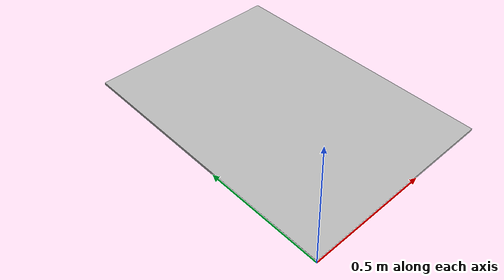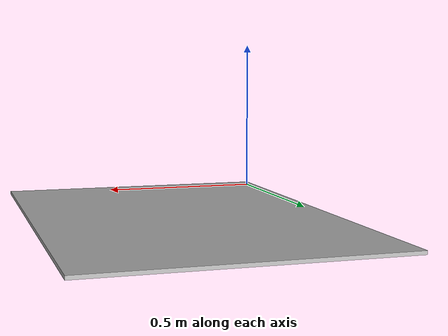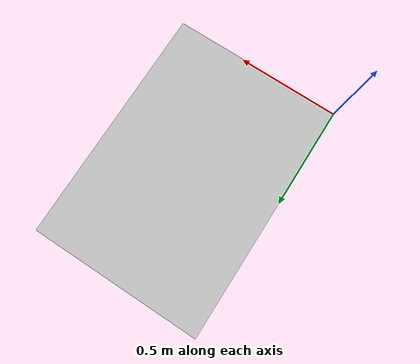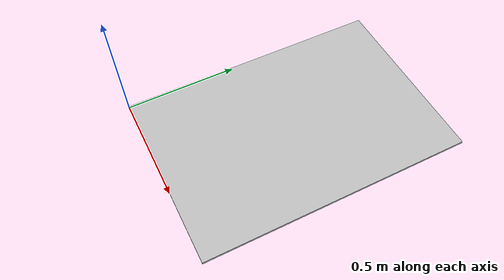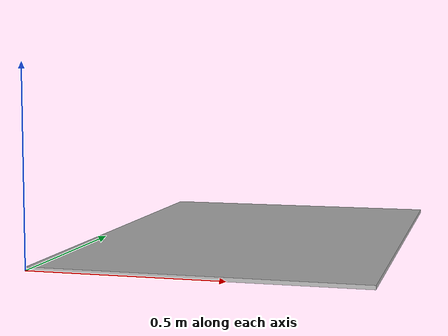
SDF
<?xml version='1.0' encoding='UTF-8'?>
<sdf version="1.6">
  <model name="kalibr">
    <static>true</static>
    <link name="object">
      <visual name="visual">
        <geometry>
          <mesh>
            <uri>model://kalibr/meshes/kalibr.dae</uri>
          </mesh>
        </geometry>
      </visual>
      <collision name="collision">
        <pose>0 0 0 0 0 0</pose>
        <geometry>
          <mesh>
            <uri>model://kalibr/meshes/kalibr.dae</uri>
          </mesh>
        </geometry>
      </collision>
    </link>
  </model>
</sdf>
